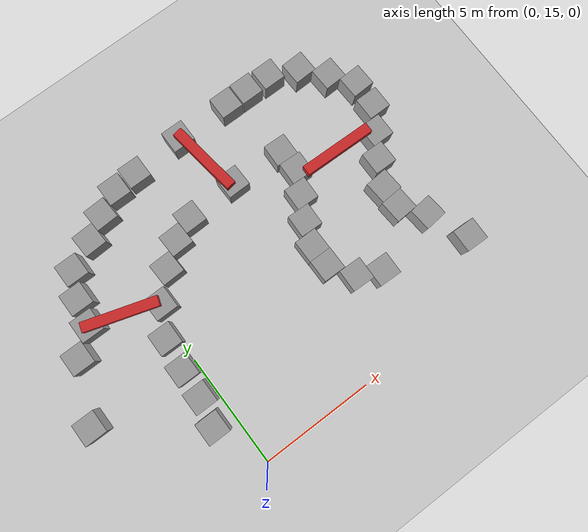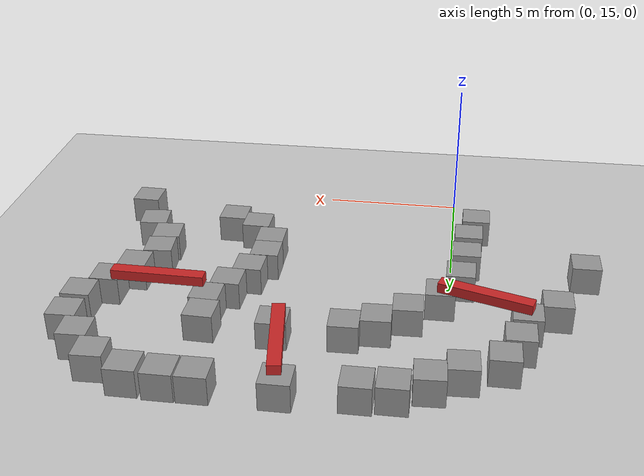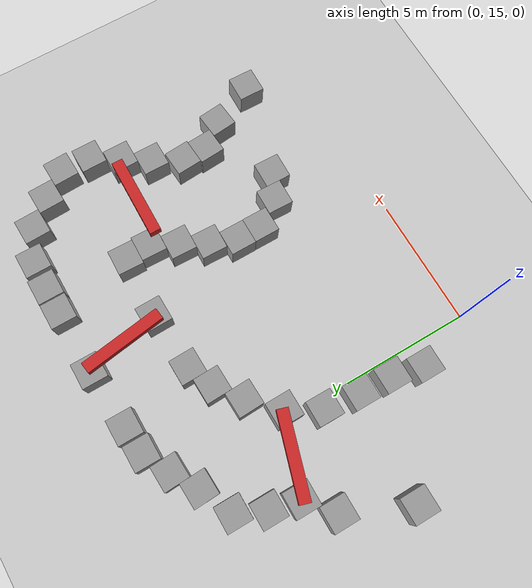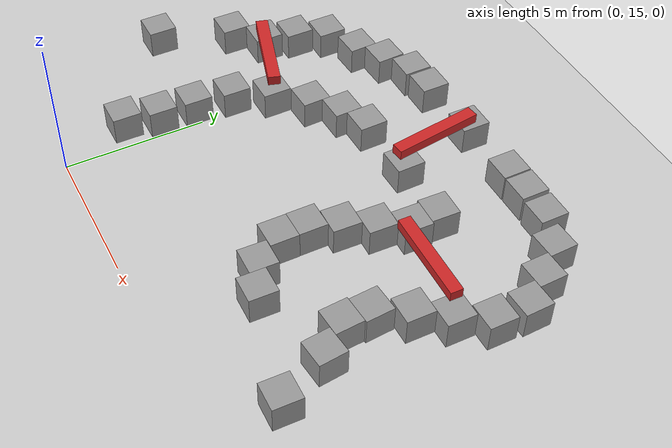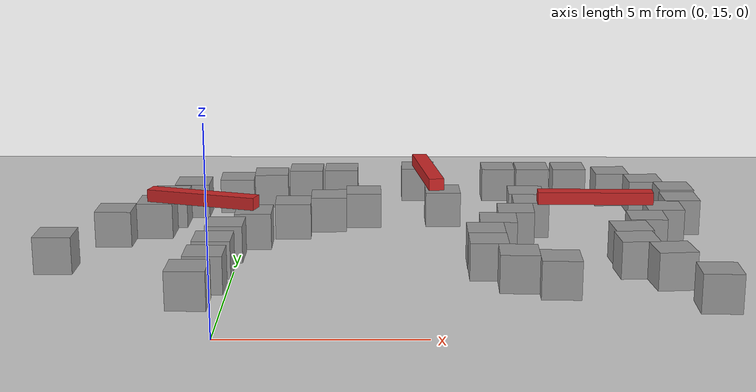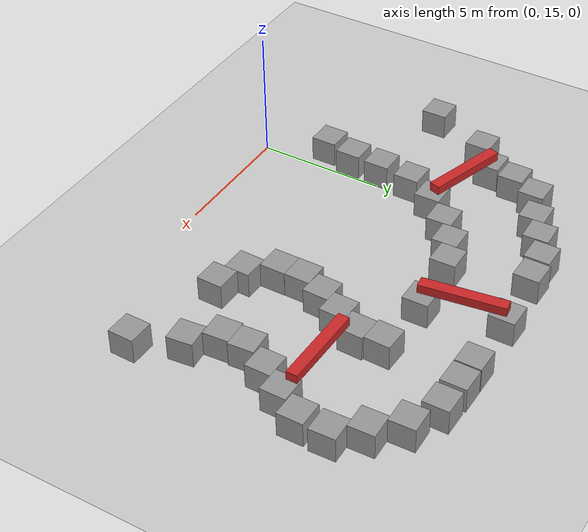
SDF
<sdf version="1.7">
 <world name="default">
  <model name="ground_plane">
   <static>1</static>
   <link name="link">
    <collision name="collision">
     <geometry><plane><normal>0 0 1</normal><size>100 100</size></plane></geometry>
     <surface><friction><ode><mu>100</mu><mu2>50</mu2></ode></friction></surface>
    </collision>
    <visual name="visual">
     <cast_shadows>0</cast_shadows>
     <geometry><plane><normal>0 0 1</normal><size>100 100</size></plane></geometry>
     <material>
      <script><uri>file://media/materials/scripts/gazebo.material</uri><name>Gazebo/Grey</name></script>
     </material>
    </visual>
   </link>
  </model>
  <model name="unit_box_29">
   <pose>12.0081 17.2916 0.499995 1e-05 -0 -0.024336</pose>
   <link name="link">
    <inertial>
     <mass>1</mass>
     <inertia>
      <ixx>0.166667</ixx>
      <ixy>0</ixy>
      <ixz>0</ixz>
      <iyy>0.166667</iyy>
      <iyz>0</iyz>
      <izz>0.166667</izz>
     </inertia>
    </inertial>
    <collision name="collision"><geometry><box><size>1 0.999996 1</size></box></geometry></collision>
    <visual name="visual">
     <geometry><box><size>1 0.999996 1</size></box></geometry>
     <material>
      <script><name>Gazebo/Grey</name><uri>file://media/materials/scripts/gazebo.material</uri></script>
     </material>
    </visual>
   </link>
  </model>
  <model name="unit_box_31">
   <pose>11.2269 19.05 0.5 0 -0 0.100627</pose>
   <link name="link">
    <inertial>
     <mass>1</mass>
     <inertia>
      <ixx>0.166667</ixx>
      <ixy>0</ixy>
      <ixz>0</ixz>
      <iyy>0.166667</iyy>
      <iyz>0</iyz>
      <izz>0.166667</izz>
     </inertia>
    </inertial>
    <collision name="collision"><geometry><box><size>1 1 1</size></box></geometry></collision>
    <visual name="visual">
     <geometry><box><size>1 1 1</size></box></geometry>
     <material>
      <script><name>Gazebo/Grey</name><uri>file://media/materials/scripts/gazebo.material</uri></script>
     </material>
    </visual>
   </link>
  </model>
  <model name="unit_box_32">
   <pose>8.29846 18.3019 0.499995 0 -1e-05 -0.024164</pose>
   <link name="link">
    <inertial>
     <mass>1</mass>
     <inertia>
      <ixx>0.166667</ixx>
      <ixy>0</ixy>
      <ixz>0</ixz>
      <iyy>0.166667</iyy>
      <iyz>0</iyz>
      <izz>0.166667</izz>
     </inertia>
    </inertial>
    <collision name="collision"><geometry><box><size>1 1 1</size></box></geometry></collision>
    <visual name="visual">
     <geometry><box><size>1 1 1</size></box></geometry>
     <material>
      <script><name>Gazebo/Grey</name><uri>file://media/materials/scripts/gazebo.material</uri></script>
     </material>
    </visual>
   </link>
  </model>
  <model name="unit_box_33">
   <pose>7.30964 18.7818 0.499995 0 1e-05 -0.024113</pose>
   <link name="link">
    <inertial>
     <mass>1</mass>
     <inertia>
      <ixx>0.166667</ixx>
      <ixy>0</ixy>
      <ixz>0</ixz>
      <iyy>0.166667</iyy>
      <iyz>0</iyz>
      <izz>0.166667</izz>
     </inertia>
    </inertial>
    <collision name="collision"><geometry><box><size>1 1 1</size></box></geometry></collision>
    <visual name="visual">
     <geometry><box><size>1 1 1</size></box></geometry>
     <material>
      <script><name>Gazebo/Grey</name><uri>file://media/materials/scripts/gazebo.material</uri></script>
     </material>
    </visual>
   </link>
  </model>
  <model name="unit_box_34">
   <pose>6.6108 19.8024 0.499995 0 -1e-05 -0.003081</pose>
   <link name="link">
    <inertial>
     <mass>1</mass>
     <inertia>
      <ixx>0.166667</ixx>
      <ixy>0</ixy>
      <ixz>0</ixz>
      <iyy>0.166667</iyy>
      <iyz>0</iyz>
      <izz>0.166667</izz>
     </inertia>
    </inertial>
    <collision name="collision"><geometry><box><size>1 1 1</size></box></geometry></collision>
    <visual name="visual">
     <geometry><box><size>1 1 1</size></box></geometry>
     <material>
      <script><name>Gazebo/Grey</name><uri>file://media/materials/scripts/gazebo.material</uri></script>
     </material>
    </visual>
   </link>
  </model>
  <model name="unit_box_35">
   <pose>10.4664 19.9942 0.5 0 -0 0.068452</pose>
   <link name="link">
    <inertial>
     <mass>1</mass>
     <inertia>
      <ixx>0.166667</ixx>
      <ixy>0</ixy>
      <ixz>0</ixz>
      <iyy>0.166667</iyy>
      <iyz>0</iyz>
      <izz>0.166667</izz>
     </inertia>
    </inertial>
    <collision name="collision"><geometry><box><size>1 1 1</size></box></geometry></collision>
    <visual name="visual">
     <geometry><box><size>1 1 1</size></box></geometry>
     <material>
      <script><name>Gazebo/Grey</name><uri>file://media/materials/scripts/gazebo.material</uri></script>
     </material>
    </visual>
   </link>
  </model>
  <model name="unit_box_36">
   <pose>10.4725 20.9969 0.5 0 -0 0.068451</pose>
   <link name="link">
    <inertial>
     <mass>1</mass>
     <inertia>
      <ixx>0.166667</ixx>
      <ixy>0</ixy>
      <ixz>0</ixz>
      <iyy>0.166667</iyy>
      <iyz>0</iyz>
      <izz>0.166667</izz>
     </inertia>
    </inertial>
    <collision name="collision"><geometry><box><size>1 1 1</size></box></geometry></collision>
    <visual name="visual">
     <geometry><box><size>1 1 1</size></box></geometry>
     <material>
      <script><name>Gazebo/Grey</name><uri>file://media/materials/scripts/gazebo.material</uri></script>
     </material>
    </visual>
   </link>
  </model>
  <model name="unit_box_37">
   <pose>6.60546 20.8025 0.5 0 -0 -0.003129</pose>
   <link name="link">
    <inertial>
     <mass>1</mass>
     <inertia>
      <ixx>0.166667</ixx>
      <ixy>0</ixy>
      <ixz>0</ixz>
      <iyy>0.166667</iyy>
      <iyz>0</iyz>
      <izz>0.166667</izz>
     </inertia>
    </inertial>
    <collision name="collision"><geometry><box><size>1 1 1</size></box></geometry></collision>
    <visual name="visual">
     <geometry><box><size>1 1 1</size></box></geometry>
     <material>
      <script><name>Gazebo/Grey</name><uri>file://media/materials/scripts/gazebo.material</uri></script>
     </material>
    </visual>
   </link>
  </model>
  <model name="unit_box_38">
   <pose>11.0611 22.0712 0.49998 7e-06 -2e-06 -0.009984</pose>
   <link name="link">
    <inertial>
     <mass>1</mass>
     <inertia>
      <ixx>0.166667</ixx>
      <ixy>0</ixy>
      <ixz>0</ixz>
      <iyy>0.166667</iyy>
      <iyz>0</iyz>
      <izz>0.166667</izz>
     </inertia>
    </inertial>
    <collision name="collision"><geometry><box><size>1 1 1</size></box></geometry></collision>
    <visual name="visual">
     <geometry><box><size>1 1 1</size></box></geometry>
     <material>
      <script><name>Gazebo/Grey</name><uri>file://media/materials/scripts/gazebo.material</uri></script>
     </material>
    </visual>
   </link>
  </model>
  <model name="unit_box_39">
   <pose>11.7065 23.0653 0.5 0 0 -0.008951</pose>
   <link name="link">
    <inertial>
     <mass>1</mass>
     <inertia>
      <ixx>0.166667</ixx>
      <ixy>0</ixy>
      <ixz>0</ixz>
      <iyy>0.166667</iyy>
      <iyz>0</iyz>
      <izz>0.166667</izz>
     </inertia>
    </inertial>
    <collision name="collision"><geometry><box><size>1 1 1</size></box></geometry></collision>
    <visual name="visual">
     <geometry><box><size>1 1 1</size></box></geometry>
     <material>
      <script><name>Gazebo/Grey</name><uri>file://media/materials/scripts/gazebo.material</uri></script>
     </material>
    </visual>
   </link>
  </model>
  <model name="unit_box_40">
   <pose>6.99695 21.8048 0.499995 0 -1e-05 -0.032784</pose>
   <link name="link">
    <inertial>
     <mass>1</mass>
     <inertia>
      <ixx>0.166667</ixx>
      <ixy>0</ixy>
      <ixz>0</ixz>
      <iyy>0.166667</iyy>
      <iyz>0</iyz>
      <izz>0.166667</izz>
     </inertia>
    </inertial>
    <collision name="collision"><geometry><box><size>1 1 1</size></box></geometry></collision>
    <visual name="visual">
     <geometry><box><size>1 1 1</size></box></geometry>
     <material>
      <script><name>Gazebo/Grey</name><uri>file://media/materials/scripts/gazebo.material</uri></script>
     </material>
    </visual>
   </link>
  </model>
  <model name="unit_box_41">
   <pose>7.54915 22.7874 0.499995 0 -1e-05 -0.032706</pose>
   <link name="link">
    <inertial>
     <mass>1</mass>
     <inertia>
      <ixx>0.166667</ixx>
      <ixy>0</ixy>
      <ixz>0</ixz>
      <iyy>0.166667</iyy>
      <iyz>0</iyz>
      <izz>0.166667</izz>
     </inertia>
    </inertial>
    <collision name="collision"><geometry><box><size>1 1 1</size></box></geometry></collision>
    <visual name="visual">
     <geometry><box><size>1 1 1</size></box></geometry>
     <material>
      <script><name>Gazebo/Grey</name><uri>file://media/materials/scripts/gazebo.material</uri></script>
     </material>
    </visual>
   </link>
  </model>
  <model name="unit_box_42">
   <pose>12.3435 24.0958 0.499995 0 -1e-05 0</pose>
   <link name="link">
    <inertial>
     <mass>1</mass>
     <inertia>
      <ixx>0.166667</ixx>
      <ixy>0</ixy>
      <ixz>0</ixz>
      <iyy>0.166667</iyy>
      <iyz>0</iyz>
      <izz>0.166667</izz>
     </inertia>
    </inertial>
    <collision name="collision"><geometry><box><size>1 1 1</size></box></geometry></collision>
    <visual name="visual">
     <geometry><box><size>1 1 1</size></box></geometry>
     <material>
      <script><name>Gazebo/Grey</name><uri>file://media/materials/scripts/gazebo.material</uri></script>
     </material>
    </visual>
   </link>
  </model>
  <model name="unit_box_43">
   <pose>8.05112 23.775 0.5 0 0 -0.030671</pose>
   <link name="link">
    <inertial>
     <mass>1</mass>
     <inertia>
      <ixx>0.166667</ixx>
      <ixy>0</ixy>
      <ixz>0</ixz>
      <iyy>0.166667</iyy>
      <iyz>0</iyz>
      <izz>0.166667</izz>
     </inertia>
    </inertial>
    <collision name="collision"><geometry><box><size>1 1 1</size></box></geometry></collision>
    <visual name="visual">
     <geometry><box><size>1 1 1</size></box></geometry>
     <material>
      <script><name>Gazebo/Grey</name><uri>file://media/materials/scripts/gazebo.material</uri></script>
     </material>
    </visual>
   </link>
  </model>
  <model name="unit_box_44">
   <pose>12.391 25.2839 0.499995 0 1e-05 0.03194</pose>
   <link name="link">
    <inertial>
     <mass>1</mass>
     <inertia>
      <ixx>0.166667</ixx>
      <ixy>0</ixy>
      <ixz>0</ixz>
      <iyy>0.166667</iyy>
      <iyz>0</iyz>
      <izz>0.166667</izz>
     </inertia>
    </inertial>
    <collision name="collision"><geometry><box><size>1 1 1</size></box></geometry></collision>
    <visual name="visual">
     <geometry><box><size>1 1 1</size></box></geometry>
     <material>
      <script><name>Gazebo/Grey</name><uri>file://media/materials/scripts/gazebo.material</uri></script>
     </material>
    </visual>
   </link>
  </model>
  <model name="unit_box_45">
   <pose>7.99029 24.7773 0.499992 0 -1e-06 -0.030672</pose>
   <link name="link">
    <inertial>
     <mass>1</mass>
     <inertia>
      <ixx>0.166667</ixx>
      <ixy>0</ixy>
      <ixz>0</ixz>
      <iyy>0.166667</iyy>
      <iyz>0</iyz>
      <izz>0.166667</izz>
     </inertia>
    </inertial>
    <collision name="collision"><geometry><box><size>1 1 1</size></box></geometry></collision>
    <visual name="visual">
     <geometry><box><size>1 1 1</size></box></geometry>
     <material>
      <script><name>Gazebo/Grey</name><uri>file://media/materials/scripts/gazebo.material</uri></script>
     </material>
    </visual>
   </link>
  </model>
  <model name="unit_box_46">
   <pose>11.6614 26.2617 0.499995 -0 1e-05 0.031058</pose>
   <link name="link">
    <inertial>
     <mass>1</mass>
     <inertia>
      <ixx>0.166667</ixx>
      <ixy>0</ixy>
      <ixz>0</ixz>
      <iyy>0.166667</iyy>
      <iyz>0</iyz>
      <izz>0.166667</izz>
     </inertia>
    </inertial>
    <collision name="collision"><geometry><box><size>1 1 1</size></box></geometry></collision>
    <visual name="visual">
     <geometry><box><size>1 1 1</size></box></geometry>
     <material>
      <script><name>Gazebo/Grey</name><uri>file://media/materials/scripts/gazebo.material</uri></script>
     </material>
    </visual>
   </link>
  </model>
  <model name="unit_box_47">
   <pose>10.8073 27.2358 0.499995 -1e-05 -0 0.030886</pose>
   <link name="link">
    <inertial>
     <mass>1</mass>
     <inertia>
      <ixx>0.166667</ixx>
      <ixy>0</ixy>
      <ixz>0</ixz>
      <iyy>0.166667</iyy>
      <iyz>0</iyz>
      <izz>0.166667</izz>
     </inertia>
    </inertial>
    <collision name="collision"><geometry><box><size>1 1 1</size></box></geometry></collision>
    <visual name="visual">
     <geometry><box><size>1 1 1</size></box></geometry>
     <material>
      <script><name>Gazebo/Grey</name><uri>file://media/materials/scripts/gazebo.material</uri></script>
     </material>
    </visual>
   </link>
  </model>
  <model name="unit_box_48">
   <pose>9.57849 27.7816 0.499995 0 -1e-05 0</pose>
   <link name="link">
    <inertial>
     <mass>1</mass>
     <inertia>
      <ixx>0.166667</ixx>
      <ixy>0</ixy>
      <ixz>0</ixz>
      <iyy>0.166667</iyy>
      <iyz>0</iyz>
      <izz>0.166667</izz>
     </inertia>
    </inertial>
    <collision name="collision"><geometry><box><size>1 1 1</size></box></geometry></collision>
    <visual name="visual">
     <geometry><box><size>1 1 1</size></box></geometry>
     <material>
      <script><name>Gazebo/Grey</name><uri>file://media/materials/scripts/gazebo.material</uri></script>
     </material>
    </visual>
   </link>
  </model>
  <model name="unit_box_49">
   <pose>8.44638 27.8261 0.499995 0 -1e-05 0</pose>
   <link name="link">
    <inertial>
     <mass>1</mass>
     <inertia>
      <ixx>0.166667</ixx>
      <ixy>0</ixy>
      <ixz>0</ixz>
      <iyy>0.166667</iyy>
      <iyz>0</iyz>
      <izz>0.166667</izz>
     </inertia>
    </inertial>
    <collision name="collision"><geometry><box><size>1 1 1</size></box></geometry></collision>
    <visual name="visual">
     <geometry><box><size>1 1 1</size></box></geometry>
     <material>
      <script><name>Gazebo/Grey</name><uri>file://media/materials/scripts/gazebo.material</uri></script>
     </material>
    </visual>
   </link>
  </model>
  <model name="unit_box_50">
   <pose>4.91935 27.8257 0.499997 6e-06 0 -0.001145</pose>
   <link name="link">
    <inertial>
     <mass>1</mass>
     <inertia>
      <ixx>0.166667</ixx>
      <ixy>0</ixy>
      <ixz>0</ixz>
      <iyy>0.166667</iyy>
      <iyz>0</iyz>
      <izz>0.166667</izz>
     </inertia>
    </inertial>
    <collision name="collision"><geometry><box><size>0.999999 1 1</size></box></geometry></collision>
    <visual name="visual">
     <geometry><box><size>0.999999 1 1</size></box></geometry>
     <material>
      <script><name>Gazebo/Grey</name><uri>file://media/materials/scripts/gazebo.material</uri></script>
     </material>
    </visual>
   </link>
  </model>
  <model name="unit_box_51">
   <pose>7.39771 27.8228 0.499995 0 -1e-05 0</pose>
   <link name="link">
    <inertial>
     <mass>1</mass>
     <inertia>
      <ixx>0.166667</ixx>
      <ixy>0</ixy>
      <ixz>0</ixz>
      <iyy>0.166667</iyy>
      <iyz>0</iyz>
      <izz>0.166667</izz>
     </inertia>
    </inertial>
    <collision name="collision"><geometry><box><size>1 1 1</size></box></geometry></collision>
    <visual name="visual">
     <geometry><box><size>1 1 1</size></box></geometry>
     <material>
      <script><name>Gazebo/Grey</name><uri>file://media/materials/scripts/gazebo.material</uri></script>
     </material>
    </visual>
   </link>
  </model>
  <model name="unit_box_52">
   <pose>5.59188 24.8935 0.499991 -1e-06 1e-06 0.016913</pose>
   <link name="link">
    <inertial>
     <mass>1</mass>
     <inertia>
      <ixx>0.166667</ixx>
      <ixy>0</ixy>
      <ixz>0</ixz>
      <iyy>0.166667</iyy>
      <iyz>0</iyz>
      <izz>0.166667</izz>
     </inertia>
    </inertial>
    <collision name="collision"><geometry><box><size>1 1 1</size></box></geometry></collision>
    <visual name="visual">
     <geometry><box><size>1 1 1</size></box></geometry>
     <material>
      <script><name>Gazebo/Grey</name><uri>file://media/materials/scripts/gazebo.material</uri></script>
     </material>
    </visual>
   </link>
  </model>
  <model name="unit_box_53">
   <pose>3.30066 24.7514 0.5 0 -0 0.021486</pose>
   <link name="link">
    <inertial>
     <mass>1</mass>
     <inertia>
      <ixx>0.166667</ixx>
      <ixy>0</ixy>
      <ixz>0</ixz>
      <iyy>0.166667</iyy>
      <iyz>0</iyz>
      <izz>0.166667</izz>
     </inertia>
    </inertial>
    <collision name="collision"><geometry><box><size>1 1 1</size></box></geometry></collision>
    <visual name="visual">
     <geometry><box><size>1 1 1</size></box></geometry>
     <material>
      <script><name>Gazebo/Grey</name><uri>file://media/materials/scripts/gazebo.material</uri></script>
     </material>
    </visual>
   </link>
  </model>
  <model name="unit_box_54">
   <pose>2.30913 24.3076 0.499995 -1e-05 -0 0.031693</pose>
   <link name="link">
    <inertial>
     <mass>1</mass>
     <inertia>
      <ixx>0.166667</ixx>
      <ixy>0</ixy>
      <ixz>0</ixz>
      <iyy>0.166667</iyy>
      <iyz>0</iyz>
      <izz>0.166667</izz>
     </inertia>
    </inertial>
    <collision name="collision"><geometry><box><size>1 1 1</size></box></geometry></collision>
    <visual name="visual">
     <geometry><box><size>1 1 1</size></box></geometry>
     <material>
      <script><name>Gazebo/Grey</name><uri>file://media/materials/scripts/gazebo.material</uri></script>
     </material>
    </visual>
   </link>
  </model>
  <model name="unit_box_55">
   <pose>1.33211 23.5789 0.499995 -1e-05 -0 0.033791</pose>
   <link name="link">
    <inertial>
     <mass>1</mass>
     <inertia>
      <ixx>0.166667</ixx>
      <ixy>0</ixy>
      <ixz>0</ixz>
      <iyy>0.166667</iyy>
      <iyz>0</iyz>
      <izz>0.166667</izz>
     </inertia>
    </inertial>
    <collision name="collision"><geometry><box><size>1 1 1</size></box></geometry></collision>
    <visual name="visual">
     <geometry><box><size>1 1 1</size></box></geometry>
     <material>
      <script><name>Gazebo/Grey</name><uri>file://media/materials/scripts/gazebo.material</uri></script>
     </material>
    </visual>
   </link>
  </model>
  <model name="unit_box_56">
   <pose>2.56469 27.6472 0.499995 0 -1e-05 0</pose>
   <link name="link">
    <inertial>
     <mass>1</mass>
     <inertia>
      <ixx>0.166667</ixx>
      <ixy>0</ixy>
      <ixz>0</ixz>
      <iyy>0.166667</iyy>
      <iyz>0</iyz>
      <izz>0.166667</izz>
     </inertia>
    </inertial>
    <collision name="collision"><geometry><box><size>1 1 1</size></box></geometry></collision>
    <visual name="visual">
     <geometry><box><size>1 1 1</size></box></geometry>
     <material>
      <script><name>Gazebo/Grey</name><uri>file://media/materials/scripts/gazebo.material</uri></script>
     </material>
    </visual>
   </link>
  </model>
  <model name="unit_box_57">
   <pose>1.49299 27.5538 0.499995 0 -1e-05 0</pose>
   <link name="link">
    <inertial>
     <mass>1</mass>
     <inertia>
      <ixx>0.166667</ixx>
      <ixy>0</ixy>
      <ixz>0</ixz>
      <iyy>0.166667</iyy>
      <iyz>0</iyz>
      <izz>0.166667</izz>
     </inertia>
    </inertial>
    <collision name="collision"><geometry><box><size>1 1 1</size></box></geometry></collision>
    <visual name="visual">
     <geometry><box><size>1 1 1</size></box></geometry>
     <material>
      <script><name>Gazebo/Grey</name><uri>file://media/materials/scripts/gazebo.material</uri></script>
     </material>
    </visual>
   </link>
  </model>
  <model name="unit_box_58">
   <pose>0.453125 27.0163 0.5 0 -0 0.043039</pose>
   <link name="link">
    <inertial>
     <mass>1</mass>
     <inertia>
      <ixx>0.166667</ixx>
      <ixy>0</ixy>
      <ixz>0</ixz>
      <iyy>0.166667</iyy>
      <iyz>0</iyz>
      <izz>0.166667</izz>
     </inertia>
    </inertial>
    <collision name="collision"><geometry><box><size>1 1 1</size></box></geometry></collision>
    <visual name="visual">
     <geometry><box><size>1 1 1</size></box></geometry>
     <material>
      <script><name>Gazebo/Grey</name><uri>file://media/materials/scripts/gazebo.material</uri></script>
     </material>
    </visual>
   </link>
  </model>
  <model name="unit_box_59">
   <pose>-0.522531 26.4135 0.499995 0 1e-05 0.043043</pose>
   <link name="link">
    <inertial>
     <mass>1</mass>
     <inertia>
      <ixx>0.166667</ixx>
      <ixy>0</ixy>
      <ixz>0</ixz>
      <iyy>0.166667</iyy>
      <iyz>0</iyz>
      <izz>0.166667</izz>
     </inertia>
    </inertial>
    <collision name="collision"><geometry><box><size>1 1 1</size></box></geometry></collision>
    <visual name="visual">
     <geometry><box><size>1 1 1</size></box></geometry>
     <material>
      <script><name>Gazebo/Grey</name><uri>file://media/materials/scripts/gazebo.material</uri></script>
     </material>
    </visual>
   </link>
  </model>
  <model name="unit_box_60">
   <pose>-1.77889 25.8196 0.499995 0 -1e-05 0</pose>
   <link name="link">
    <inertial>
     <mass>1</mass>
     <inertia>
      <ixx>0.166667</ixx>
      <ixy>0</ixy>
      <ixz>0</ixz>
      <iyy>0.166667</iyy>
      <iyz>0</iyz>
      <izz>0.166667</izz>
     </inertia>
    </inertial>
    <collision name="collision"><geometry><box><size>1 1 1</size></box></geometry></collision>
    <visual name="visual">
     <geometry><box><size>1 1 1</size></box></geometry>
     <material>
      <script><name>Gazebo/Grey</name><uri>file://media/materials/scripts/gazebo.material</uri></script>
     </material>
    </visual>
   </link>
  </model>
  <model name="unit_box_61">
   <pose>-2.28487 24.7366 0.499995 0 -1e-05 0</pose>
   <link name="link">
    <inertial>
     <mass>1</mass>
     <inertia>
      <ixx>0.166667</ixx>
      <ixy>0</ixy>
      <ixz>0</ixz>
      <iyy>0.166667</iyy>
      <iyz>0</iyz>
      <izz>0.166667</izz>
     </inertia>
    </inertial>
    <collision name="collision"><geometry><box><size>1 1 1</size></box></geometry></collision>
    <visual name="visual">
     <geometry><box><size>1 1 1</size></box></geometry>
     <material>
      <script><name>Gazebo/Grey</name><uri>file://media/materials/scripts/gazebo.material</uri></script>
     </material>
    </visual>
   </link>
  </model>
  <model name="unit_box_62">
   <pose>-2.54114 23.6088 0.499964 -1e-05 -1e-06 -0.004934</pose>
   <link name="link">
    <inertial>
     <mass>1</mass>
     <inertia>
      <ixx>0.166667</ixx>
      <ixy>0</ixy>
      <ixz>0</ixz>
      <iyy>0.166667</iyy>
      <iyz>0</iyz>
      <izz>0.166667</izz>
     </inertia>
    </inertial>
    <collision name="collision"><geometry><box><size>1 1 1</size></box></geometry></collision>
    <visual name="visual">
     <geometry><box><size>1 1 1</size></box></geometry>
     <material>
      <script><name>Gazebo/Grey</name><uri>file://media/materials/scripts/gazebo.material</uri></script>
     </material>
    </visual>
   </link>
  </model>
  <model name="unit_box_70">
   <pose>0.310886 22.5602 0.5 -2e-06 -3e-06 0.008293</pose>
   <link name="link">
    <inertial>
     <mass>1</mass>
     <inertia>
      <ixx>0.166667</ixx>
      <ixy>0</ixy>
      <ixz>0</ixz>
      <iyy>0.166667</iyy>
      <iyz>0</iyz>
      <izz>0.166667</izz>
     </inertia>
    </inertial>
    <collision name="collision"><geometry><box><size>1 1 1</size></box></geometry></collision>
    <visual name="visual">
     <geometry><box><size>1 1 1</size></box></geometry>
     <material>
      <script><name>Gazebo/Grey</name><uri>file://media/materials/scripts/gazebo.material</uri></script>
     </material>
    </visual>
   </link>
  </model>
  <model name="unit_box_71">
   <pose>-0.34897 21.3192 0.499995 -0 1e-05 -0.005315</pose>
   <link name="link">
    <inertial>
     <mass>1</mass>
     <inertia>
      <ixx>0.166667</ixx>
      <ixy>0</ixy>
      <ixz>0</ixz>
      <iyy>0.166667</iyy>
      <iyz>0</iyz>
      <izz>0.166667</izz>
     </inertia>
    </inertial>
    <collision name="collision"><geometry><box><size>1 1 1</size></box></geometry></collision>
    <visual name="visual">
     <geometry><box><size>1 1 1</size></box></geometry>
     <material>
      <script><name>Gazebo/Grey</name><uri>file://media/materials/scripts/gazebo.material</uri></script>
     </material>
    </visual>
   </link>
  </model>
  <model name="unit_box_72">
   <pose>-0.519106 19.9315 0.499995 0 -1e-05 0</pose>
   <link name="link">
    <inertial>
     <mass>1</mass>
     <inertia>
      <ixx>0.166667</ixx>
      <ixy>0</ixy>
      <ixz>0</ixz>
      <iyy>0.166667</iyy>
      <iyz>0</iyz>
      <izz>0.166667</izz>
     </inertia>
    </inertial>
    <collision name="collision"><geometry><box><size>1 1 1</size></box></geometry></collision>
    <visual name="visual">
     <geometry><box><size>1 1 1</size></box></geometry>
     <material>
      <script><name>Gazebo/Grey</name><uri>file://media/materials/scripts/gazebo.material</uri></script>
     </material>
    </visual>
   </link>
  </model>
  <model name="unit_box_73">
   <pose>-0.577361 18.6489 0.499995 0 -1e-05 0</pose>
   <link name="link">
    <inertial>
     <mass>1</mass>
     <inertia>
      <ixx>0.166667</ixx>
      <ixy>0</ixy>
      <ixz>0</ixz>
      <iyy>0.166667</iyy>
      <iyz>0</iyz>
      <izz>0.166667</izz>
     </inertia>
    </inertial>
    <collision name="collision"><geometry><box><size>1 1 1</size></box></geometry></collision>
    <visual name="visual">
     <geometry><box><size>1 1 1</size></box></geometry>
     <material>
      <script><name>Gazebo/Grey</name><uri>file://media/materials/scripts/gazebo.material</uri></script>
     </material>
    </visual>
   </link>
  </model>
  <model name="unit_box_75">
   <pose>-0.840389 17.4261 0.499995 0 -1e-05 0</pose>
   <link name="link">
    <inertial>
     <mass>1</mass>
     <inertia>
      <ixx>0.166667</ixx>
      <ixy>0</ixy>
      <ixz>0</ixz>
      <iyy>0.166667</iyy>
      <iyz>0</iyz>
      <izz>0.166667</izz>
     </inertia>
    </inertial>
    <collision name="collision"><geometry><box><size>1 1 1</size></box></geometry></collision>
    <visual name="visual">
     <geometry><box><size>1 1 1</size></box></geometry>
     <material>
      <script><name>Gazebo/Grey</name><uri>file://media/materials/scripts/gazebo.material</uri></script>
     </material>
    </visual>
   </link>
  </model>
  <model name="unit_box_78">
   <pose>-4.67061 20.2678 0.5 -0 -0 -0</pose>
   <link name="link">
    <inertial>
     <mass>1</mass>
     <inertia>
      <ixx>0.166667</ixx>
      <ixy>0</ixy>
      <ixz>0</ixz>
      <iyy>0.166667</iyy>
      <iyz>0</iyz>
      <izz>0.166667</izz>
     </inertia>
    </inertial>
    <collision name="collision"><geometry><box><size>1 1 1</size></box></geometry></collision>
    <visual name="visual">
     <geometry><box><size>1 1 1</size></box></geometry>
     <material>
      <script><name>Gazebo/Grey</name><uri>file://media/materials/scripts/gazebo.material</uri></script>
     </material>
    </visual>
   </link>
  </model>
  <model name="unit_box_79">
   <pose>-3.55272 22.7465 0.499995 -1e-05 -0 -0.002763</pose>
   <link name="link">
    <inertial>
     <mass>1</mass>
     <inertia>
      <ixx>0.166667</ixx>
      <ixy>0</ixy>
      <ixz>0</ixz>
      <iyy>0.166667</iyy>
      <iyz>0</iyz>
      <izz>0.166667</izz>
     </inertia>
    </inertial>
    <collision name="collision"><geometry><box><size>1 1 1</size></box></geometry></collision>
    <visual name="visual">
     <geometry><box><size>1 1 1</size></box></geometry>
     <material>
      <script><name>Gazebo/Grey</name><uri>file://media/materials/scripts/gazebo.material</uri></script>
     </material>
    </visual>
   </link>
  </model>
  <model name="unit_box_80_clone_clone">
   <link name="link">
    <inertial>
     <mass>1</mass>
     <inertia>
      <ixx>0.166667</ixx>
      <ixy>0</ixy>
      <ixz>0</ixz>
      <iyy>0.166667</iyy>
      <iyz>0</iyz>
      <izz>0.166667</izz>
     </inertia>
    </inertial>
    <visual name="visual">
     <geometry><box><size>0.435987 3.21473 0.347679</size></box></geometry>
     <material>
      <script><name>Gazebo/Red</name><uri>file://media/materials/scripts/gazebo.material</uri></script>
      <shader type="pixel"><normal_map>__default__</normal_map></shader>
      <ambient>1 0 0 1</ambient>
      <diffuse>1 0 0 1</diffuse>
      <specular>0.1 0.1 0.1 1</specular>
      <emissive>0 0 0 1</emissive>
     </material>
    </visual>
    <collision name="collision">
     <geometry><box><size>0.435987 3.21473 0.347679</size></box></geometry>
     <surface>
      <friction>
       <ode><mu>1</mu><mu2>1</mu2><fdir1>0 0 0</fdir1><slip1>0</slip1><slip2>0</slip2></ode>
       <torsional>
        <coefficient>1</coefficient>
        <patch_radius>0</patch_radius>
        <surface_radius>0</surface_radius>
        <use_patch_radius>1</use_patch_radius>
        <ode><slip>0</slip></ode>
       </torsional>
      </friction>
      <bounce><restitution_coefficient>0</restitution_coefficient><threshold>1e+06</threshold></bounce>
      <contact>
       <collide_without_contact>0</collide_without_contact>
       <collide_without_contact_bitmask>1</collide_without_contact_bitmask>
       <collide_bitmask>1</collide_bitmask>
       <ode>
        <soft_cfm>0</soft_cfm>
        <soft_erp>0.2</soft_erp>
        <kp>1e+13</kp>
        <kd>1</kd>
        <max_vel>0.01</max_vel>
        <min_depth>0</min_depth>
       </ode>
       <bullet>
        <split_impulse>1</split_impulse>
        <split_impulse_penetration_threshold>-0.01</split_impulse_penetration_threshold>
        <soft_cfm>0</soft_cfm>
        <soft_erp>0.2</soft_erp>
        <kp>1e+13</kp>
        <kd>1</kd>
       </bullet>
      </contact>
     </surface>
    </collision>
   </link>
   <static>0</static>
   <pose>9.81634 23.3326 1.17379 -2.7e-05 1.8e-05 1.55087</pose>
  </model>
  <model name="unit_box_80_clone_clone_0_0">
   <link name="link">
    <inertial>
     <mass>1</mass>
     <inertia>
      <ixx>0.166667</ixx>
      <ixy>0</ixy>
      <ixz>0</ixz>
      <iyy>0.166667</iyy>
      <iyz>0</iyz>
      <izz>0.166667</izz>
     </inertia>
    </inertial>
    <visual name="visual">
     <geometry><box><size>0.435987 3.21473 0.347679</size></box></geometry>
     <material>
      <script><name>Gazebo/Red</name><uri>file://media/materials/scripts/gazebo.material</uri></script>
      <shader type="pixel"><normal_map>__default__</normal_map></shader>
      <ambient>1 0 0 1</ambient>
      <diffuse>1 0 0 1</diffuse>
      <specular>0.1 0.1 0.1 1</specular>
      <emissive>0 0 0 1</emissive>
     </material>
    </visual>
    <collision name="collision">
     <geometry><box><size>0.435987 3.21473 0.347679</size></box></geometry>
     <surface>
      <friction>
       <ode><mu>1</mu><mu2>1</mu2><fdir1>0 0 0</fdir1><slip1>0</slip1><slip2>0</slip2></ode>
       <torsional>
        <coefficient>1</coefficient>
        <patch_radius>0</patch_radius>
        <surface_radius>0</surface_radius>
        <use_patch_radius>1</use_patch_radius>
        <ode><slip>0</slip></ode>
       </torsional>
      </friction>
      <bounce><restitution_coefficient>0</restitution_coefficient><threshold>1e+06</threshold></bounce>
      <contact>
       <collide_without_contact>0</collide_without_contact>
       <collide_without_contact_bitmask>1</collide_without_contact_bitmask>
       <collide_bitmask>1</collide_bitmask>
       <ode>
        <soft_cfm>0</soft_cfm>
        <soft_erp>0.2</soft_erp>
        <kp>1e+13</kp>
        <kd>1</kd>
        <max_vel>0.01</max_vel>
        <min_depth>0</min_depth>
       </ode>
       <bullet>
        <split_impulse>1</split_impulse>
        <split_impulse_penetration_threshold>-0.01</split_impulse_penetration_threshold>
        <soft_cfm>0</soft_cfm>
        <soft_erp>0.2</soft_erp>
        <kp>1e+13</kp>
        <kd>1</kd>
       </bullet>
      </contact>
     </surface>
    </collision>
   </link>
   <static>0</static>
   <pose>5.19402 26.2965 1.17384 -1e-06 1.1e-05 0.138083</pose>
  </model>
  <model name="unit_box_80_clone_clone_0_1">
   <link name="link">
    <inertial>
     <mass>1</mass>
     <inertia>
      <ixx>0.166667</ixx>
      <ixy>0</ixy>
      <ixz>0</ixz>
      <iyy>0.166667</iyy>
      <iyz>0</iyz>
      <izz>0.166667</izz>
     </inertia>
    </inertial>
    <visual name="visual">
     <geometry><box><size>0.435987 3.21473 0.347679</size></box></geometry>
     <material>
      <script><name>Gazebo/Red</name><uri>file://media/materials/scripts/gazebo.material</uri></script>
      <shader type="pixel"><normal_map>__default__</normal_map></shader>
      <ambient>1 0 0 1</ambient>
      <diffuse>1 0 0 1</diffuse>
      <specular>0.1 0.1 0.1 1</specular>
      <emissive>0 0 0 1</emissive>
     </material>
    </visual>
    <collision name="collision">
     <geometry><box><size>0.435987 3.21473 0.347679</size></box></geometry>
     <surface>
      <friction>
       <ode><mu>1</mu><mu2>1</mu2><fdir1>0 0 0</fdir1><slip1>0</slip1><slip2>0</slip2></ode>
       <torsional>
        <coefficient>1</coefficient>
        <patch_radius>0</patch_radius>
        <surface_radius>0</surface_radius>
        <use_patch_radius>1</use_patch_radius>
        <ode><slip>0</slip></ode>
       </torsional>
      </friction>
      <bounce><restitution_coefficient>0</restitution_coefficient><threshold>1e+06</threshold></bounce>
      <contact>
       <collide_without_contact>0</collide_without_contact>
       <collide_without_contact_bitmask>1</collide_without_contact_bitmask>
       <collide_bitmask>1</collide_bitmask>
       <ode>
        <soft_cfm>0</soft_cfm>
        <soft_erp>0.2</soft_erp>
        <kp>1e+13</kp>
        <kd>1</kd>
        <max_vel>0.01</max_vel>
        <min_depth>0</min_depth>
       </ode>
       <bullet>
        <split_impulse>1</split_impulse>
        <split_impulse_penetration_threshold>-0.01</split_impulse_penetration_threshold>
        <soft_cfm>0</soft_cfm>
        <soft_erp>0.2</soft_erp>
        <kp>1e+13</kp>
        <kd>1</kd>
       </bullet>
      </contact>
     </surface>
    </collision>
   </link>
   <static>0</static>
   <pose>-1.1721 23.1301 1.17382 -3.14158 -1e-05 -1.87148</pose>
  </model>
 </world>
</sdf>
